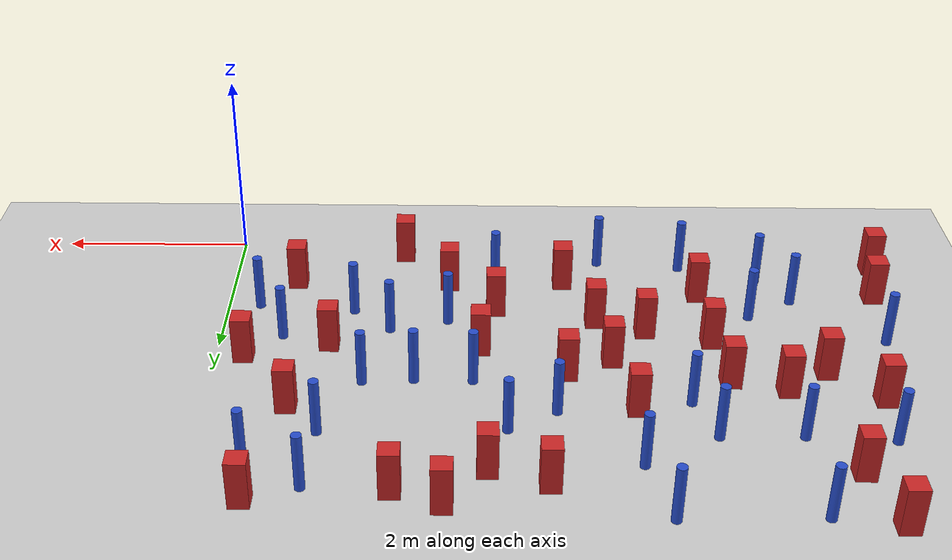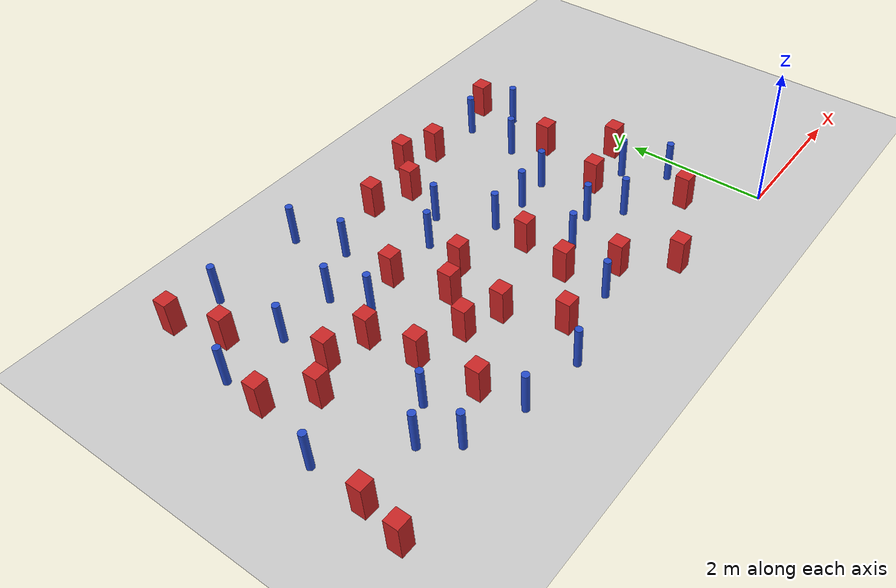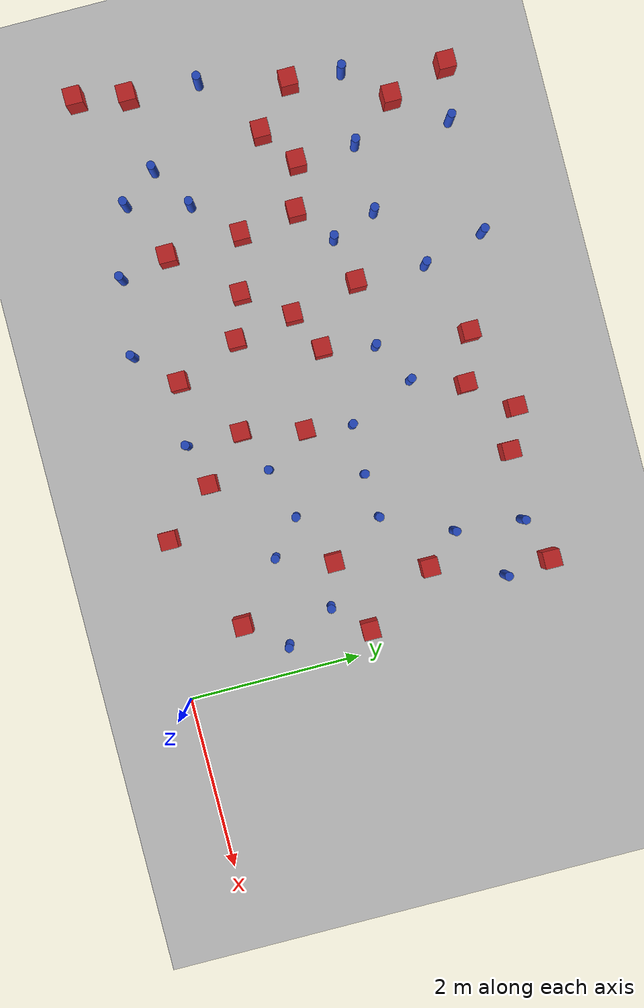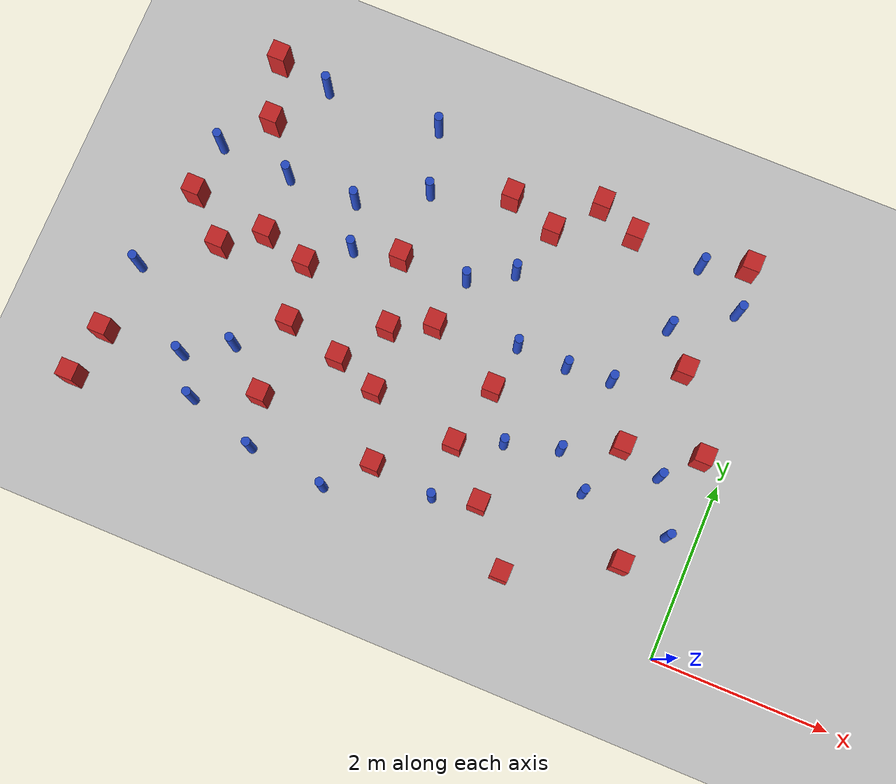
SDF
<sdf version="1.6">
 <world name="default">
  <model name="ground_plane">
   <static>1</static>
   <link name="link">
    <collision name="collision">
     <geometry><plane><normal>0 0 1</normal><size>100 100</size></plane></geometry>
     <surface><friction><ode><mu>100</mu><mu2>50</mu2></ode></friction></surface>
    </collision>
    <visual name="visual">
     <cast_shadows>0</cast_shadows>
     <geometry><plane><normal>0 0 1</normal><size>100 100</size></plane></geometry>
     <material>
      <ambient>1.0 1.0 1.0 1.0</ambient>
      <diffuse>0.8 0.8 0.8 1.0</diffuse>
      <specular>0.01 0.01 0.01 1.000000</specular>
     </material>
    </visual>
   </link>
  </model>
  <model name="square_post_obstacle5">
   <static>true</static>
   <pose>-3.86596981586 1.54469500206 -4.36207812815e-07 3.75137919937e-06 9.77721102514e-07 2.47381364184e-05</pose>
   <link name="link">
    <pose>0 0 0.25 0 -0 0</pose>
    <inertial>
     <mass>100</mass>
     <inertia>
      <ixx>0.166667</ixx>
      <ixy>0</ixy>
      <ixz>0</ixz>
      <iyy>0.166667</iyy>
      <iyz>0</iyz>
      <izz>0.166667</izz>
     </inertia>
    </inertial>
    <collision name="collision"><geometry><box><size>.2 .2 .5</size></box></geometry></collision>
    <visual name="visual">
     <geometry><box><size>.2 .2 .5</size></box></geometry>
     <material>
      <script><name>Gazebo/Red</name><uri>file://media/materials/scripts/gazebo.material</uri></script>
     </material>
    </visual>
   </link>
  </model>
  <model name="square_post_obstacle7">
   <static>true</static>
   <pose>-2.67470018567 2.05516223829 -4.36207812815e-07 3.75137919937e-06 9.77721102514e-07 2.47381364184e-05</pose>
   <link name="link">
    <pose>0 0 0.25 0 -0 0</pose>
    <inertial>
     <mass>100</mass>
     <inertia>
      <ixx>0.166667</ixx>
      <ixy>0</ixy>
      <ixz>0</ixz>
      <iyy>0.166667</iyy>
      <iyz>0</iyz>
      <izz>0.166667</izz>
     </inertia>
    </inertial>
    <collision name="collision"><geometry><box><size>.2 .2 .5</size></box></geometry></collision>
    <visual name="visual">
     <geometry><box><size>.2 .2 .5</size></box></geometry>
     <material>
      <script><name>Gazebo/Red</name><uri>file://media/materials/scripts/gazebo.material</uri></script>
     </material>
    </visual>
   </link>
  </model>
  <model name="pole_obstacle13">
   <static>true</static>
   <pose>-1.06494217687 4.20370881026 -3.09024884793e-07 -7.19054271912e-07 -2.11315075134e-07 -1.93935509265e-07</pose>
   <link name="link">
    <pose>0 0 0.3 0 -0 0</pose>
    <inertial>
     <mass>1</mass>
     <inertia><ixx>0.145833</ixx><ixy>0</ixy><ixz>0</ixz><iyy>0.145833</iyy><iyz>0</iyz><izz>0.125</izz></inertia>
    </inertial>
    <collision name="collision">
     <geometry><cylinder><radius>0.05</radius><length>.6</length></cylinder></geometry>
    </collision>
    <visual name="visual">
     <geometry><cylinder><radius>0.05</radius><length>.6</length></cylinder></geometry>
     <material>
      <script><name>Gazebo/Blue</name><uri>file://media/materials/scripts/gazebo.material</uri></script>
     </material>
    </visual>
   </link>
  </model>
  <model name="pole_obstacle26">
   <static>true</static>
   <pose>-1.74052222635 1.70367840327 -3.09024884793e-07 -7.19054271912e-07 -2.1131507513e-07 -1.93935509263e-07</pose>
   <link name="link">
    <pose>0 0 0.3 0 -0 0</pose>
    <inertial>
     <mass>1</mass>
     <inertia><ixx>0.145833</ixx><ixy>0</ixy><ixz>0</ixz><iyy>0.145833</iyy><iyz>0</iyz><izz>0.125</izz></inertia>
    </inertial>
    <collision name="collision">
     <geometry><cylinder><radius>0.05</radius><length>.6</length></cylinder></geometry>
    </collision>
    <visual name="visual">
     <geometry><cylinder><radius>0.05</radius><length>.6</length></cylinder></geometry>
     <material>
      <script><name>Gazebo/Blue</name><uri>file://media/materials/scripts/gazebo.material</uri></script>
     </material>
    </visual>
   </link>
  </model>
  <model name="pole_obstacle27">
   <static>true</static>
   <pose>-1.34639860156 1.36079025889 -3.09024884793e-07 -7.19054271912e-07 -2.1131507513e-07 -1.93935509263e-07</pose>
   <link name="link">
    <pose>0 0 0.3 0 -0 0</pose>
    <inertial>
     <mass>1</mass>
     <inertia><ixx>0.145833</ixx><ixy>0</ixy><ixz>0</ixz><iyy>0.145833</iyy><iyz>0</iyz><izz>0.125</izz></inertia>
    </inertial>
    <collision name="collision">
     <geometry><cylinder><radius>0.05</radius><length>.6</length></cylinder></geometry>
    </collision>
    <visual name="visual">
     <geometry><cylinder><radius>0.05</radius><length>.6</length></cylinder></geometry>
     <material>
      <script><name>Gazebo/Blue</name><uri>file://media/materials/scripts/gazebo.material</uri></script>
     </material>
    </visual>
   </link>
  </model>
  <model name="square_post_obstacle27">
   <static>true</static>
   <pose>-5.12865214852 2.57391601149 -4.36207812815e-07 3.75137919937e-06 9.77721102514e-07 2.47381364184e-05</pose>
   <link name="link">
    <pose>0 0 0.25 0 -0 0</pose>
    <inertial>
     <mass>100</mass>
     <inertia>
      <ixx>0.166667</ixx>
      <ixy>0</ixy>
      <ixz>0</ixz>
      <iyy>0.166667</iyy>
      <iyz>0</iyz>
      <izz>0.166667</izz>
     </inertia>
    </inertial>
    <collision name="collision"><geometry><box><size>.2 .2 .5</size></box></geometry></collision>
    <visual name="visual">
     <geometry><box><size>.2 .2 .5</size></box></geometry>
     <material>
      <script><name>Gazebo/Red</name><uri>file://media/materials/scripts/gazebo.material</uri></script>
     </material>
    </visual>
   </link>
  </model>
  <model name="pole_obstacle41">
   <static>true</static>
   <pose>-0.336554518417 1.26419817546 -3.09024884793e-07 -7.19054271912e-07 -2.11315075135e-07 -1.93935509265e-07</pose>
   <link name="link">
    <pose>0 0 0.3 0 -0 0</pose>
    <inertial>
     <mass>1</mass>
     <inertia><ixx>0.145833</ixx><ixy>0</ixy><ixz>0</ixz><iyy>0.145833</iyy><iyz>0</iyz><izz>0.125</izz></inertia>
    </inertial>
    <collision name="collision">
     <geometry><cylinder><radius>0.05</radius><length>.6</length></cylinder></geometry>
    </collision>
    <visual name="visual">
     <geometry><cylinder><radius>0.05</radius><length>.6</length></cylinder></geometry>
     <material>
      <script><name>Gazebo/Blue</name><uri>file://media/materials/scripts/gazebo.material</uri></script>
     </material>
    </visual>
   </link>
  </model>
  <model name="square_post_obstacle31">
   <static>true</static>
   <pose>-6.58038819236 2.8579494461 -4.36207812815e-07 3.75137919937e-06 9.77721102514e-07 2.47381364184e-05</pose>
   <link name="link">
    <pose>0 0 0.25 0 -0 0</pose>
    <inertial>
     <mass>100</mass>
     <inertia>
      <ixx>0.166667</ixx>
      <ixy>0</ixy>
      <ixz>0</ixz>
      <iyy>0.166667</iyy>
      <iyz>0</iyz>
      <izz>0.166667</izz>
     </inertia>
    </inertial>
    <collision name="collision"><geometry><box><size>.2 .2 .5</size></box></geometry></collision>
    <visual name="visual">
     <geometry><box><size>.2 .2 .5</size></box></geometry>
     <material>
      <script><name>Gazebo/Red</name><uri>file://media/materials/scripts/gazebo.material</uri></script>
     </material>
    </visual>
   </link>
  </model>
  <model name="pole_obstacle44">
   <static>true</static>
   <pose>-1.5063312732 2.62010520414 -3.09024884793e-07 -7.19054271912e-07 -2.11315075132e-07 -1.93935509263e-07</pose>
   <link name="link">
    <pose>0 0 0.3 0 -0 0</pose>
    <inertial>
     <mass>1</mass>
     <inertia><ixx>0.145833</ixx><ixy>0</ixy><ixz>0</ixz><iyy>0.145833</iyy><iyz>0</iyz><izz>0.125</izz></inertia>
    </inertial>
    <collision name="collision">
     <geometry><cylinder><radius>0.05</radius><length>.6</length></cylinder></geometry>
    </collision>
    <visual name="visual">
     <geometry><cylinder><radius>0.05</radius><length>.6</length></cylinder></geometry>
     <material>
      <script><name>Gazebo/Blue</name><uri>file://media/materials/scripts/gazebo.material</uri></script>
     </material>
    </visual>
   </link>
  </model>
  <model name="pole_obstacle53">
   <static>true</static>
   <pose>-2.83733491334 0.699360603717 -3.09024884793e-07 -7.19054271913e-07 -2.1131507512e-07 -1.93935509259e-07</pose>
   <link name="link">
    <pose>0 0 0.3 0 -0 0</pose>
    <inertial>
     <mass>1</mass>
     <inertia><ixx>0.145833</ixx><ixy>0</ixy><ixz>0</ixz><iyy>0.145833</iyy><iyz>0</iyz><izz>0.125</izz></inertia>
    </inertial>
    <collision name="collision">
     <geometry><cylinder><radius>0.05</radius><length>.6</length></cylinder></geometry>
    </collision>
    <visual name="visual">
     <geometry><cylinder><radius>0.05</radius><length>.6</length></cylinder></geometry>
     <material>
      <script><name>Gazebo/Blue</name><uri>file://media/materials/scripts/gazebo.material</uri></script>
     </material>
    </visual>
   </link>
  </model>
  <model name="pole_obstacle58">
   <static>true</static>
   <pose>-5.70055864035 3.42110021084 -3.09024884793e-07 -7.19054271912e-07 -2.11315075144e-07 -1.93935509269e-07</pose>
   <link name="link">
    <pose>0 0 0.3 0 -0 0</pose>
    <inertial>
     <mass>1</mass>
     <inertia><ixx>0.145833</ixx><ixy>0</ixy><ixz>0</ixz><iyy>0.145833</iyy><iyz>0</iyz><izz>0.125</izz></inertia>
    </inertial>
    <collision name="collision">
     <geometry><cylinder><radius>0.05</radius><length>.6</length></cylinder></geometry>
    </collision>
    <visual name="visual">
     <geometry><cylinder><radius>0.05</radius><length>.6</length></cylinder></geometry>
     <material>
      <script><name>Gazebo/Blue</name><uri>file://media/materials/scripts/gazebo.material</uri></script>
     </material>
    </visual>
   </link>
  </model>
  <model name="pole_obstacle60">
   <static>true</static>
   <pose>-2.33632131131 1.53788512353 -3.09024884793e-07 -7.19054271912e-07 -2.11315075122e-07 -1.93935509259e-07</pose>
   <link name="link">
    <pose>0 0 0.3 0 -0 0</pose>
    <inertial>
     <mass>1</mass>
     <inertia><ixx>0.145833</ixx><ixy>0</ixy><ixz>0</ixz><iyy>0.145833</iyy><iyz>0</iyz><izz>0.125</izz></inertia>
    </inertial>
    <collision name="collision">
     <geometry><cylinder><radius>0.05</radius><length>.6</length></cylinder></geometry>
    </collision>
    <visual name="visual">
     <geometry><cylinder><radius>0.05</radius><length>.6</length></cylinder></geometry>
     <material>
      <script><name>Gazebo/Blue</name><uri>file://media/materials/scripts/gazebo.material</uri></script>
     </material>
    </visual>
   </link>
  </model>
  <model name="pole_obstacle62">
   <static>true</static>
   <pose>-5.98188881663 1.11413940439 -3.09024884793e-07 -7.19054271912e-07 -2.11315075124e-07 -1.93935509261e-07</pose>
   <link name="link">
    <pose>0 0 0.3 0 -0 0</pose>
    <inertial>
     <mass>1</mass>
     <inertia><ixx>0.145833</ixx><ixy>0</ixy><ixz>0</ixz><iyy>0.145833</iyy><iyz>0</iyz><izz>0.125</izz></inertia>
    </inertial>
    <collision name="collision">
     <geometry><cylinder><radius>0.05</radius><length>.6</length></cylinder></geometry>
    </collision>
    <visual name="visual">
     <geometry><cylinder><radius>0.05</radius><length>.6</length></cylinder></geometry>
     <material>
      <script><name>Gazebo/Blue</name><uri>file://media/materials/scripts/gazebo.material</uri></script>
     </material>
    </visual>
   </link>
  </model>
  <model name="pole_obstacle64">
   <static>true</static>
   <pose>-4.16445814384 3.85342391064 -3.09024884793e-07 -7.19054271912e-07 -2.11315075144e-07 -1.93935509269e-07</pose>
   <link name="link">
    <pose>0 0 0.3 0 -0 0</pose>
    <inertial>
     <mass>1</mass>
     <inertia><ixx>0.145833</ixx><ixy>0</ixy><ixz>0</ixz><iyy>0.145833</iyy><iyz>0</iyz><izz>0.125</izz></inertia>
    </inertial>
    <collision name="collision">
     <geometry><cylinder><radius>0.05</radius><length>.6</length></cylinder></geometry>
    </collision>
    <visual name="visual">
     <geometry><cylinder><radius>0.05</radius><length>.6</length></cylinder></geometry>
     <material>
      <script><name>Gazebo/Blue</name><uri>file://media/materials/scripts/gazebo.material</uri></script>
     </material>
    </visual>
   </link>
  </model>
  <model name="square_post_obstacle50">
   <static>true</static>
   <pose>-6.87411885531 1.03703224985 -4.36207812815e-07 3.75137919937e-06 9.77721102514e-07 2.47381364184e-05</pose>
   <link name="link">
    <pose>0 0 0.25 0 -0 0</pose>
    <inertial>
     <mass>100</mass>
     <inertia>
      <ixx>0.166667</ixx>
      <ixy>0</ixy>
      <ixz>0</ixz>
      <iyy>0.166667</iyy>
      <iyz>0</iyz>
      <izz>0.166667</izz>
     </inertia>
    </inertial>
    <collision name="collision"><geometry><box><size>.2 .2 .5</size></box></geometry></collision>
    <visual name="visual">
     <geometry><box><size>.2 .2 .5</size></box></geometry>
     <material>
      <script><name>Gazebo/Red</name><uri>file://media/materials/scripts/gazebo.material</uri></script>
     </material>
    </visual>
   </link>
  </model>
  <model name="square_post_obstacle64">
   <static>true</static>
   <pose>-6.98606019736 0.448361944423 -4.36207812815e-07 3.75137919937e-06 9.77721102514e-07 2.47381364184e-05</pose>
   <link name="link">
    <pose>0 0 0.25 0 -0 0</pose>
    <inertial>
     <mass>100</mass>
     <inertia>
      <ixx>0.166667</ixx>
      <ixy>0</ixy>
      <ixz>0</ixz>
      <iyy>0.166667</iyy>
      <iyz>0</iyz>
      <izz>0.166667</izz>
     </inertia>
    </inertial>
    <collision name="collision"><geometry><box><size>.2 .2 .5</size></box></geometry></collision>
    <visual name="visual">
     <geometry><box><size>.2 .2 .5</size></box></geometry>
     <material>
      <script><name>Gazebo/Red</name><uri>file://media/materials/scripts/gazebo.material</uri></script>
     </material>
    </visual>
   </link>
  </model>
  <model name="square_post_obstacle65">
   <static>true</static>
   <pose>-3.53139885994 2.47123605929 -4.36207812815e-07 3.75137919937e-06 9.77721102514e-07 2.47381364184e-05</pose>
   <link name="link">
    <pose>0 0 0.25 0 -0 0</pose>
    <inertial>
     <mass>100</mass>
     <inertia>
      <ixx>0.166667</ixx>
      <ixy>0</ixy>
      <ixz>0</ixz>
      <iyy>0.166667</iyy>
      <iyz>0</iyz>
      <izz>0.166667</izz>
     </inertia>
    </inertial>
    <collision name="collision"><geometry><box><size>.2 .2 .5</size></box></geometry></collision>
    <visual name="visual">
     <geometry><box><size>.2 .2 .5</size></box></geometry>
     <material>
      <script><name>Gazebo/Red</name><uri>file://media/materials/scripts/gazebo.material</uri></script>
     </material>
    </visual>
   </link>
  </model>
  <model name="square_post_obstacle77">
   <static>true</static>
   <pose>-2.33182771768 4.44160547545 -4.36207812815e-07 3.75137919937e-06 9.77721102514e-07 2.47381364184e-05</pose>
   <link name="link">
    <pose>0 0 0.25 0 -0 0</pose>
    <inertial>
     <mass>100</mass>
     <inertia>
      <ixx>0.166667</ixx>
      <ixy>0</ixy>
      <ixz>0</ixz>
      <iyy>0.166667</iyy>
      <iyz>0</iyz>
      <izz>0.166667</izz>
     </inertia>
    </inertial>
    <collision name="collision"><geometry><box><size>.2 .2 .5</size></box></geometry></collision>
    <visual name="visual">
     <geometry><box><size>.2 .2 .5</size></box></geometry>
     <material>
      <script><name>Gazebo/Red</name><uri>file://media/materials/scripts/gazebo.material</uri></script>
     </material>
    </visual>
   </link>
  </model>
  <model name="square_post_obstacle84">
   <static>true</static>
   <pose>-3.56243313619 0.79223876171 -4.36207812815e-07 3.75137919937e-06 9.77721102514e-07 2.47381364184e-05</pose>
   <link name="link">
    <pose>0 0 0.25 0 -0 0</pose>
    <inertial>
     <mass>100</mass>
     <inertia>
      <ixx>0.166667</ixx>
      <ixy>0</ixy>
      <ixz>0</ixz>
      <iyy>0.166667</iyy>
      <iyz>0</iyz>
      <izz>0.166667</izz>
     </inertia>
    </inertial>
    <collision name="collision"><geometry><box><size>.2 .2 .5</size></box></geometry></collision>
    <visual name="visual">
     <geometry><box><size>.2 .2 .5</size></box></geometry>
     <material>
      <script><name>Gazebo/Red</name><uri>file://media/materials/scripts/gazebo.material</uri></script>
     </material>
    </visual>
   </link>
  </model>
  <model name="square_post_obstacle86">
   <static>true</static>
   <pose>-6.32651156995 4.64239583076 -4.36207812815e-07 3.75137919937e-06 9.77721102514e-07 2.47381364184e-05</pose>
   <link name="link">
    <pose>0 0 0.25 0 -0 0</pose>
    <inertial>
     <mass>100</mass>
     <inertia>
      <ixx>0.166667</ixx>
      <ixy>0</ixy>
      <ixz>0</ixz>
      <iyy>0.166667</iyy>
      <iyz>0</iyz>
      <izz>0.166667</izz>
     </inertia>
    </inertial>
    <collision name="collision"><geometry><box><size>.2 .2 .5</size></box></geometry></collision>
    <visual name="visual">
     <geometry><box><size>.2 .2 .5</size></box></geometry>
     <material>
      <script><name>Gazebo/Red</name><uri>file://media/materials/scripts/gazebo.material</uri></script>
     </material>
    </visual>
   </link>
  </model>
  <model name="square_post_obstacle91">
   <static>true</static>
   <pose>-0.559303267411 4.39262893478 -4.36207812815e-07 3.75137919937e-06 9.77721102514e-07 2.47381364184e-05</pose>
   <link name="link">
    <pose>0 0 0.25 0 -0 0</pose>
    <inertial>
     <mass>100</mass>
     <inertia>
      <ixx>0.166667</ixx>
      <ixy>0</ixy>
      <ixz>0</ixz>
      <iyy>0.166667</iyy>
      <iyz>0</iyz>
      <izz>0.166667</izz>
     </inertia>
    </inertial>
    <collision name="collision"><geometry><box><size>.2 .2 .5</size></box></geometry></collision>
    <visual name="visual">
     <geometry><box><size>.2 .2 .5</size></box></geometry>
     <material>
      <script><name>Gazebo/Red</name><uri>file://media/materials/scripts/gazebo.material</uri></script>
     </material>
    </visual>
   </link>
  </model>
  <model name="square_post_obstacle92">
   <static>true</static>
   <pose>-0.696640726939 0.811352926598 -4.36207812815e-07 3.75137919937e-06 9.77721102514e-07 2.47381364184e-05</pose>
   <link name="link">
    <pose>0 0 0.25 0 -0 0</pose>
    <inertial>
     <mass>100</mass>
     <inertia>
      <ixx>0.166667</ixx>
      <ixy>0</ixy>
      <ixz>0</ixz>
      <iyy>0.166667</iyy>
      <iyz>0</iyz>
      <izz>0.166667</izz>
     </inertia>
    </inertial>
    <collision name="collision"><geometry><box><size>.2 .2 .5</size></box></geometry></collision>
    <visual name="visual">
     <geometry><box><size>.2 .2 .5</size></box></geometry>
     <material>
      <script><name>Gazebo/Red</name><uri>file://media/materials/scripts/gazebo.material</uri></script>
     </material>
    </visual>
   </link>
  </model>
  <model name="pole_obstacle101">
   <static>true</static>
   <pose>-0.49868548822 3.85878045424 -3.09024884793e-07 -7.19054271912e-07 -2.11315075121e-07 -1.93935509258e-07</pose>
   <link name="link">
    <pose>0 0 0.3 0 -0 0</pose>
    <inertial>
     <mass>1</mass>
     <inertia><ixx>0.145833</ixx><ixy>0</ixy><ixz>0</ixz><iyy>0.145833</iyy><iyz>0</iyz><izz>0.125</izz></inertia>
    </inertial>
    <collision name="collision">
     <geometry><cylinder><radius>0.05</radius><length>.6</length></cylinder></geometry>
    </collision>
    <visual name="visual">
     <geometry><cylinder><radius>0.05</radius><length>.6</length></cylinder></geometry>
     <material>
      <script><name>Gazebo/Blue</name><uri>file://media/materials/scripts/gazebo.material</uri></script>
     </material>
    </visual>
   </link>
  </model>
  <model name="square_post_obstacle93">
   <static>true</static>
   <pose>-5.03005666825 1.89623718523 -4.36207812815e-07 3.75137919937e-06 9.77721102514e-07 2.47381364184e-05</pose>
   <link name="link">
    <pose>0 0 0.25 0 -0 0</pose>
    <inertial>
     <mass>100</mass>
     <inertia>
      <ixx>0.166667</ixx>
      <ixy>0</ixy>
      <ixz>0</ixz>
      <iyy>0.166667</iyy>
      <iyz>0</iyz>
      <izz>0.166667</izz>
     </inertia>
    </inertial>
    <collision name="collision"><geometry><box><size>.2 .2 .5</size></box></geometry></collision>
    <visual name="visual">
     <geometry><box><size>.2 .2 .5</size></box></geometry>
     <material>
      <script><name>Gazebo/Red</name><uri>file://media/materials/scripts/gazebo.material</uri></script>
     </material>
    </visual>
   </link>
  </model>
  <model name="square_post_obstacle95">
   <static>true</static>
   <pose>-0.287415028788 2.20524744623 -4.36207812815e-07 3.75137919937e-06 9.77721102514e-07 2.47381364184e-05</pose>
   <link name="link">
    <pose>0 0 0.25 0 -0 0</pose>
    <inertial>
     <mass>100</mass>
     <inertia>
      <ixx>0.166667</ixx>
      <ixy>0</ixy>
      <ixz>0</ixz>
      <iyy>0.166667</iyy>
      <iyz>0</iyz>
      <izz>0.166667</izz>
     </inertia>
    </inertial>
    <collision name="collision"><geometry><box><size>.2 .2 .5</size></box></geometry></collision>
    <visual name="visual">
     <geometry><box><size>.2 .2 .5</size></box></geometry>
     <material>
      <script><name>Gazebo/Red</name><uri>file://media/materials/scripts/gazebo.material</uri></script>
     </material>
    </visual>
   </link>
  </model>
  <model name="square_post_obstacle96">
   <static>true</static>
   <pose>-4.9915953202 1.02432315084 -4.36207812815e-07 3.75137919937e-06 9.77721102514e-07 2.47381364184e-05</pose>
   <link name="link">
    <pose>0 0 0.25 0 -0 0</pose>
    <inertial>
     <mass>100</mass>
     <inertia>
      <ixx>0.166667</ixx>
      <ixy>0</ixy>
      <ixz>0</ixz>
      <iyy>0.166667</iyy>
      <iyz>0</iyz>
      <izz>0.166667</izz>
     </inertia>
    </inertial>
    <collision name="collision"><geometry><box><size>.2 .2 .5</size></box></geometry></collision>
    <visual name="visual">
     <geometry><box><size>.2 .2 .5</size></box></geometry>
     <material>
      <script><name>Gazebo/Red</name><uri>file://media/materials/scripts/gazebo.material</uri></script>
     </material>
    </visual>
   </link>
  </model>
  <model name="square_post_obstacle98">
   <static>true</static>
   <pose>-0.808606617557 3.03412416331 -4.36207812815e-07 3.75137919937e-06 9.77721102514e-07 2.47381364184e-05</pose>
   <link name="link">
    <pose>0 0 0.25 0 -0 0</pose>
    <inertial>
     <mass>100</mass>
     <inertia>
      <ixx>0.166667</ixx>
      <ixy>0</ixy>
      <ixz>0</ixz>
      <iyy>0.166667</iyy>
      <iyz>0</iyz>
      <izz>0.166667</izz>
     </inertia>
    </inertial>
    <collision name="collision"><geometry><box><size>.2 .2 .5</size></box></geometry></collision>
    <visual name="visual">
     <geometry><box><size>.2 .2 .5</size></box></geometry>
     <material>
      <script><name>Gazebo/Red</name><uri>file://media/materials/scripts/gazebo.material</uri></script>
     </material>
    </visual>
   </link>
  </model>
  <model name="pole_obstacle104">
   <static>true</static>
   <pose>-4.36012940753 4.57625841259 -3.09024884793e-07 -7.19054271911e-07 -2.1131507516e-07 -1.93935509277e-07</pose>
   <link name="link">
    <pose>0 0 0.3 0 -0 0</pose>
    <inertial>
     <mass>1</mass>
     <inertia><ixx>0.145833</ixx><ixy>0</ixy><ixz>0</ixz><iyy>0.145833</iyy><iyz>0</iyz><izz>0.125</izz></inertia>
    </inertial>
    <collision name="collision">
     <geometry><cylinder><radius>0.05</radius><length>.6</length></cylinder></geometry>
    </collision>
    <visual name="visual">
     <geometry><cylinder><radius>0.05</radius><length>.6</length></cylinder></geometry>
     <material>
      <script><name>Gazebo/Blue</name><uri>file://media/materials/scripts/gazebo.material</uri></script>
     </material>
    </visual>
   </link>
  </model>
  <model name="square_post_obstacle102">
   <static>true</static>
   <pose>-3.99125631286 2.24474581565 -4.36207812815e-07 3.75137919937e-06 9.77721102514e-07 2.47381364184e-05</pose>
   <link name="link">
    <pose>0 0 0.25 0 -0 0</pose>
    <inertial>
     <mass>100</mass>
     <inertia>
      <ixx>0.166667</ixx>
      <ixy>0</ixy>
      <ixz>0</ixz>
      <iyy>0.166667</iyy>
      <iyz>0</iyz>
      <izz>0.166667</izz>
     </inertia>
    </inertial>
    <collision name="collision"><geometry><box><size>.2 .2 .5</size></box></geometry></collision>
    <visual name="visual">
     <geometry><box><size>.2 .2 .5</size></box></geometry>
     <material>
      <script><name>Gazebo/Red</name><uri>file://media/materials/scripts/gazebo.material</uri></script>
     </material>
    </visual>
   </link>
  </model>
  <model name="pole_obstacle108">
   <static>true</static>
   <pose>-3.97522700804 0.355290863343 -3.09024884848e-07 -7.19054271902e-07 -2.11315075204e-07 -1.93935509288e-07</pose>
   <link name="link">
    <pose>0 0 0.3 0 -0 0</pose>
    <inertial>
     <mass>1</mass>
     <inertia><ixx>0.145833</ixx><ixy>0</ixy><ixz>0</ixz><iyy>0.145833</iyy><iyz>0</iyz><izz>0.125</izz></inertia>
    </inertial>
    <collision name="collision">
     <geometry><cylinder><radius>0.05</radius><length>.6</length></cylinder></geometry>
    </collision>
    <visual name="visual">
     <geometry><cylinder><radius>0.05</radius><length>.6</length></cylinder></geometry>
     <material>
      <script><name>Gazebo/Blue</name><uri>file://media/materials/scripts/gazebo.material</uri></script>
     </material>
    </visual>
   </link>
  </model>
  <model name="pole_obstacle110">
   <static>true</static>
   <pose>-4.70966506186 2.91574374307 -3.09024884793e-07 -7.19054271912e-07 -2.11315075144e-07 -1.93935509269e-07</pose>
   <link name="link">
    <pose>0 0 0.3 0 -0 0</pose>
    <inertial>
     <mass>1</mass>
     <inertia><ixx>0.145833</ixx><ixy>0</ixy><ixz>0</ixz><iyy>0.145833</iyy><iyz>0</iyz><izz>0.125</izz></inertia>
    </inertial>
    <collision name="collision">
     <geometry><cylinder><radius>0.05</radius><length>.6</length></cylinder></geometry>
    </collision>
    <visual name="visual">
     <geometry><cylinder><radius>0.05</radius><length>.6</length></cylinder></geometry>
     <material>
      <script><name>Gazebo/Blue</name><uri>file://media/materials/scripts/gazebo.material</uri></script>
     </material>
    </visual>
   </link>
  </model>
  <model name="square_post_obstacle107">
   <static>true</static>
   <pose>-2.73363683931 3.96021690866 -4.36207812815e-07 3.75137919937e-06 9.77721102514e-07 2.47381364184e-05</pose>
   <link name="link">
    <pose>0 0 0.25 0 -0 0</pose>
    <inertial>
     <mass>100</mass>
     <inertia>
      <ixx>0.166667</ixx>
      <ixy>0</ixy>
      <ixz>0</ixz>
      <iyy>0.166667</iyy>
      <iyz>0</iyz>
      <izz>0.166667</izz>
     </inertia>
    </inertial>
    <collision name="collision"><geometry><box><size>.2 .2 .5</size></box></geometry></collision>
    <visual name="visual">
     <geometry><box><size>.2 .2 .5</size></box></geometry>
     <material>
      <script><name>Gazebo/Red</name><uri>file://media/materials/scripts/gazebo.material</uri></script>
     </material>
    </visual>
   </link>
  </model>
  <model name="square_post_obstacle115">
   <static>true</static>
   <pose>-5.66613386189 2.72070557219 -4.36207812815e-07 3.75137919937e-06 9.77721102514e-07 2.47381364184e-05</pose>
   <link name="link">
    <pose>0 0 0.25 0 -0 0</pose>
    <inertial>
     <mass>100</mass>
     <inertia>
      <ixx>0.166667</ixx>
      <ixy>0</ixy>
      <ixz>0</ixz>
      <iyy>0.166667</iyy>
      <iyz>0</iyz>
      <izz>0.166667</izz>
     </inertia>
    </inertial>
    <collision name="collision"><geometry><box><size>.2 .2 .5</size></box></geometry></collision>
    <visual name="visual">
     <geometry><box><size>.2 .2 .5</size></box></geometry>
     <material>
      <script><name>Gazebo/Red</name><uri>file://media/materials/scripts/gazebo.material</uri></script>
     </material>
    </visual>
   </link>
  </model>
  <model name="pole_obstacle128">
   <static>true</static>
   <pose>-3.40625825662 3.0725760385 -3.09024884793e-07 -7.19054271912e-07 -2.11315075128e-07 -1.93935509262e-07</pose>
   <link name="link">
    <pose>0 0 0.3 0 -0 0</pose>
    <inertial>
     <mass>1</mass>
     <inertia><ixx>0.145833</ixx><ixy>0</ixy><ixz>0</ixz><iyy>0.145833</iyy><iyz>0</iyz><izz>0.125</izz></inertia>
    </inertial>
    <collision name="collision">
     <geometry><cylinder><radius>0.05</radius><length>.6</length></cylinder></geometry>
    </collision>
    <visual name="visual">
     <geometry><cylinder><radius>0.05</radius><length>.6</length></cylinder></geometry>
     <material>
      <script><name>Gazebo/Blue</name><uri>file://media/materials/scripts/gazebo.material</uri></script>
     </material>
    </visual>
   </link>
  </model>
  <model name="square_post_obstacle126">
   <static>true</static>
   <pose>-1.86661129223 4.25445898203 -4.36207812815e-07 3.75137919937e-06 9.77721102514e-07 2.47381364184e-05</pose>
   <link name="link">
    <pose>0 0 0.25 0 -0 0</pose>
    <inertial>
     <mass>100</mass>
     <inertia>
      <ixx>0.166667</ixx>
      <ixy>0</ixy>
      <ixz>0</ixz>
      <iyy>0.166667</iyy>
      <iyz>0</iyz>
      <izz>0.166667</izz>
     </inertia>
    </inertial>
    <collision name="collision"><geometry><box><size>.2 .2 .5</size></box></geometry></collision>
    <visual name="visual">
     <geometry><box><size>.2 .2 .5</size></box></geometry>
     <material>
      <script><name>Gazebo/Red</name><uri>file://media/materials/scripts/gazebo.material</uri></script>
     </material>
    </visual>
   </link>
  </model>
  <model name="square_post_obstacle128">
   <static>true</static>
   <pose>-2.83709324169 1.33447685394 -4.36207812815e-07 3.75137919937e-06 9.77721102514e-07 2.47381364184e-05</pose>
   <link name="link">
    <pose>0 0 0.25 0 -0 0</pose>
    <inertial>
     <mass>100</mass>
     <inertia>
      <ixx>0.166667</ixx>
      <ixy>0</ixy>
      <ixz>0</ixz>
      <iyy>0.166667</iyy>
      <iyz>0</iyz>
      <izz>0.166667</izz>
     </inertia>
    </inertial>
    <collision name="collision"><geometry><box><size>.2 .2 .5</size></box></geometry></collision>
    <visual name="visual">
     <geometry><box><size>.2 .2 .5</size></box></geometry>
     <material>
      <script><name>Gazebo/Red</name><uri>file://media/materials/scripts/gazebo.material</uri></script>
     </material>
    </visual>
   </link>
  </model>
  <model name="square_post_obstacle133">
   <static>true</static>
   <pose>-2.34517829482 0.832895999586 -4.36207812815e-07 3.75137919937e-06 9.77721102514e-07 2.47381364184e-05</pose>
   <link name="link">
    <pose>0 0 0.25 0 -0 0</pose>
    <inertial>
     <mass>100</mass>
     <inertia>
      <ixx>0.166667</ixx>
      <ixy>0</ixy>
      <ixz>0</ixz>
      <iyy>0.166667</iyy>
      <iyz>0</iyz>
      <izz>0.166667</izz>
     </inertia>
    </inertial>
    <collision name="collision"><geometry><box><size>.2 .2 .5</size></box></geometry></collision>
    <visual name="visual">
     <geometry><box><size>.2 .2 .5</size></box></geometry>
     <material>
      <script><name>Gazebo/Red</name><uri>file://media/materials/scripts/gazebo.material</uri></script>
     </material>
    </visual>
   </link>
  </model>
  <model name="pole_obstacle139">
   <static>true</static>
   <pose>-0.642163546959 1.83416449676 -3.09024884793e-07 -7.19054271912e-07 -2.11315075135e-07 -1.93935509266e-07</pose>
   <link name="link">
    <pose>0 0 0.3 0 -0 0</pose>
    <inertial>
     <mass>1</mass>
     <inertia><ixx>0.145833</ixx><ixy>0</ixy><ixz>0</ixz><iyy>0.145833</iyy><iyz>0</iyz><izz>0.125</izz></inertia>
    </inertial>
    <collision name="collision">
     <geometry><cylinder><radius>0.05</radius><length>.6</length></cylinder></geometry>
    </collision>
    <visual name="visual">
     <geometry><cylinder><radius>0.05</radius><length>.6</length></cylinder></geometry>
     <material>
      <script><name>Gazebo/Blue</name><uri>file://media/materials/scripts/gazebo.material</uri></script>
     </material>
    </visual>
   </link>
  </model>
  <model name="pole_obstacle142">
   <static>true</static>
   <pose>-2.01756951175 2.5809291899 -3.09024884848e-07 -7.19054271902e-07 -2.11315075195e-07 -1.93935509284e-07</pose>
   <link name="link">
    <pose>0 0 0.3 0 -0 0</pose>
    <inertial>
     <mass>1</mass>
     <inertia><ixx>0.145833</ixx><ixy>0</ixy><ixz>0</ixz><iyy>0.145833</iyy><iyz>0</iyz><izz>0.125</izz></inertia>
    </inertial>
    <collision name="collision">
     <geometry><cylinder><radius>0.05</radius><length>.6</length></cylinder></geometry>
    </collision>
    <visual name="visual">
     <geometry><cylinder><radius>0.05</radius><length>.6</length></cylinder></geometry>
     <material>
      <script><name>Gazebo/Blue</name><uri>file://media/materials/scripts/gazebo.material</uri></script>
     </material>
    </visual>
   </link>
  </model>
  <model name="square_post_obstacle140">
   <static>true</static>
   <pose>-4.17408874685 3.03933758591 -4.36207812815e-07 3.75137919937e-06 9.77721102514e-07 2.47381364184e-05</pose>
   <link name="link">
    <pose>0 0 0.25 0 -0 0</pose>
    <inertial>
     <mass>100</mass>
     <inertia>
      <ixx>0.166667</ixx>
      <ixy>0</ixy>
      <ixz>0</ixz>
      <iyy>0.166667</iyy>
      <iyz>0</iyz>
      <izz>0.166667</izz>
     </inertia>
    </inertial>
    <collision name="collision"><geometry><box><size>.2 .2 .5</size></box></geometry></collision>
    <visual name="visual">
     <geometry><box><size>.2 .2 .5</size></box></geometry>
     <material>
      <script><name>Gazebo/Red</name><uri>file://media/materials/scripts/gazebo.material</uri></script>
     </material>
    </visual>
   </link>
  </model>
  <model name="pole_obstacle151">
   <static>true</static>
   <pose>-5.67290663503 0.706738489872 -3.09024884793e-07 -7.19054271912e-07 -2.11315075134e-07 -1.93935509265e-07</pose>
   <link name="link">
    <pose>0 0 0.3 0 -0 0</pose>
    <inertial>
     <mass>1</mass>
     <inertia><ixx>0.145833</ixx><ixy>0</ixy><ixz>0</ixz><iyy>0.145833</iyy><iyz>0</iyz><izz>0.125</izz></inertia>
    </inertial>
    <collision name="collision">
     <geometry><cylinder><radius>0.05</radius><length>.6</length></cylinder></geometry>
    </collision>
    <visual name="visual">
     <geometry><cylinder><radius>0.05</radius><length>.6</length></cylinder></geometry>
     <material>
      <script><name>Gazebo/Blue</name><uri>file://media/materials/scripts/gazebo.material</uri></script>
     </material>
    </visual>
   </link>
  </model>
  <model name="pole_obstacle152">
   <static>true</static>
   <pose>-4.89847990731 3.43625127035 -3.09024884793e-07 -7.19054271912e-07 -2.11315075144e-07 -1.93935509269e-07</pose>
   <link name="link">
    <pose>0 0 0.3 0 -0 0</pose>
    <inertial>
     <mass>1</mass>
     <inertia><ixx>0.145833</ixx><ixy>0</ixy><ixz>0</ixz><iyy>0.145833</iyy><iyz>0</iyz><izz>0.125</izz></inertia>
    </inertial>
    <collision name="collision">
     <geometry><cylinder><radius>0.05</radius><length>.6</length></cylinder></geometry>
    </collision>
    <visual name="visual">
     <geometry><cylinder><radius>0.05</radius><length>.6</length></cylinder></geometry>
     <material>
      <script><name>Gazebo/Blue</name><uri>file://media/materials/scripts/gazebo.material</uri></script>
     </material>
    </visual>
   </link>
  </model>
  <model name="pole_obstacle159">
   <static>true</static>
   <pose>-5.70111321805 4.53740931463 -3.09024884793e-07 -7.19054271911e-07 -2.1131507516e-07 -1.93935509277e-07</pose>
   <link name="link">
    <pose>0 0 0.3 0 -0 0</pose>
    <inertial>
     <mass>1</mass>
     <inertia><ixx>0.145833</ixx><ixy>0</ixy><ixz>0</ixz><iyy>0.145833</iyy><iyz>0</iyz><izz>0.125</izz></inertia>
    </inertial>
    <collision name="collision">
     <geometry><cylinder><radius>0.05</radius><length>.6</length></cylinder></geometry>
    </collision>
    <visual name="visual">
     <geometry><cylinder><radius>0.05</radius><length>.6</length></cylinder></geometry>
     <material>
      <script><name>Gazebo/Blue</name><uri>file://media/materials/scripts/gazebo.material</uri></script>
     </material>
    </visual>
   </link>
  </model>
  <model name="pole_obstacle161">
   <static>true</static>
   <pose>-2.92853352487 3.35892142768 -3.09024884793e-07 -7.19054271912e-07 -2.11315075144e-07 -1.93935509271e-07</pose>
   <link name="link">
    <pose>0 0 0.3 0 -0 0</pose>
    <inertial>
     <mass>1</mass>
     <inertia><ixx>0.145833</ixx><ixy>0</ixy><ixz>0</ixz><iyy>0.145833</iyy><iyz>0</iyz><izz>0.125</izz></inertia>
    </inertial>
    <collision name="collision">
     <geometry><cylinder><radius>0.05</radius><length>.6</length></cylinder></geometry>
    </collision>
    <visual name="visual">
     <geometry><cylinder><radius>0.05</radius><length>.6</length></cylinder></geometry>
     <material>
      <script><name>Gazebo/Blue</name><uri>file://media/materials/scripts/gazebo.material</uri></script>
     </material>
    </visual>
   </link>
  </model>
  <model name="pole_obstacle162">
   <static>true</static>
   <pose>-6.54570398533 3.47456520269 -3.09024884793e-07 -7.19054271912e-07 -2.11315075144e-07 -1.93935509269e-07</pose>
   <link name="link">
    <pose>0 0 0.3 0 -0 0</pose>
    <inertial>
     <mass>1</mass>
     <inertia><ixx>0.145833</ixx><ixy>0</ixy><ixz>0</ixz><iyy>0.145833</iyy><iyz>0</iyz><izz>0.125</izz></inertia>
    </inertial>
    <collision name="collision">
     <geometry><cylinder><radius>0.05</radius><length>.6</length></cylinder></geometry>
    </collision>
    <visual name="visual">
     <geometry><cylinder><radius>0.05</radius><length>.6</length></cylinder></geometry>
     <material>
      <script><name>Gazebo/Blue</name><uri>file://media/materials/scripts/gazebo.material</uri></script>
     </material>
    </visual>
   </link>
  </model>
  <model name="square_post_obstacle157">
   <static>true</static>
   <pose>-6.09845549706 2.41180835289 -4.36207812815e-07 3.75137919937e-06 9.77721102514e-07 2.47381364184e-05</pose>
   <link name="link">
    <pose>0 0 0.25 0 -0 0</pose>
    <inertial>
     <mass>100</mass>
     <inertia>
      <ixx>0.166667</ixx>
      <ixy>0</ixy>
      <ixz>0</ixz>
      <iyy>0.166667</iyy>
      <iyz>0</iyz>
      <izz>0.166667</izz>
     </inertia>
    </inertial>
    <collision name="collision"><geometry><box><size>.2 .2 .5</size></box></geometry></collision>
    <visual name="visual">
     <geometry><box><size>.2 .2 .5</size></box></geometry>
     <material>
      <script><name>Gazebo/Red</name><uri>file://media/materials/scripts/gazebo.material</uri></script>
     </material>
    </visual>
   </link>
  </model>
  <model name="square_post_obstacle163">
   <static>true</static>
   <pose>-1.13447962885 1.99795373884 -4.36207812815e-07 3.75137919937e-06 9.77721102514e-07 2.47381364184e-05</pose>
   <link name="link">
    <pose>0 0 0.25 0 -0 0</pose>
    <inertial>
     <mass>100</mass>
     <inertia>
      <ixx>0.166667</ixx>
      <ixy>0</ixy>
      <ixz>0</ixz>
      <iyy>0.166667</iyy>
      <iyz>0</iyz>
      <izz>0.166667</izz>
     </inertia>
    </inertial>
    <collision name="collision"><geometry><box><size>.2 .2 .5</size></box></geometry></collision>
    <visual name="visual">
     <geometry><box><size>.2 .2 .5</size></box></geometry>
     <material>
      <script><name>Gazebo/Red</name><uri>file://media/materials/scripts/gazebo.material</uri></script>
     </material>
    </visual>
   </link>
  </model>
  <model name="pole_obstacle166">
   <static>true</static>
   <pose>-1.13548907787 3.41528869615 -3.09024884793e-07 -7.19054271912e-07 -2.11315075132e-07 -1.93935509263e-07</pose>
   <link name="link">
    <pose>0 0 0.3 0 -0 0</pose>
    <inertial>
     <mass>1</mass>
     <inertia><ixx>0.145833</ixx><ixy>0</ixy><ixz>0</ixz><iyy>0.145833</iyy><iyz>0</iyz><izz>0.125</izz></inertia>
    </inertial>
    <collision name="collision">
     <geometry><cylinder><radius>0.05</radius><length>.6</length></cylinder></geometry>
    </collision>
    <visual name="visual">
     <geometry><cylinder><radius>0.05</radius><length>.6</length></cylinder></geometry>
     <material>
      <script><name>Gazebo/Blue</name><uri>file://media/materials/scripts/gazebo.material</uri></script>
     </material>
    </visual>
   </link>
  </model>
  <model name="pole_obstacle167">
   <static>true</static>
   <pose>-2.60025991967 2.59329362669 -3.09024884793e-07 -7.19054271912e-07 -2.11315075144e-07 -1.93935509271e-07</pose>
   <link name="link">
    <pose>0 0 0.3 0 -0 0</pose>
    <inertial>
     <mass>1</mass>
     <inertia><ixx>0.145833</ixx><ixy>0</ixy><ixz>0</ixz><iyy>0.145833</iyy><iyz>0</iyz><izz>0.125</izz></inertia>
    </inertial>
    <collision name="collision">
     <geometry><cylinder><radius>0.05</radius><length>.6</length></cylinder></geometry>
    </collision>
    <visual name="visual">
     <geometry><cylinder><radius>0.05</radius><length>.6</length></cylinder></geometry>
     <material>
      <script><name>Gazebo/Blue</name><uri>file://media/materials/scripts/gazebo.material</uri></script>
     </material>
    </visual>
   </link>
  </model>
  <model name="pole_obstacle168">
   <static>true</static>
   <pose>-5.49106108251 1.42385743364 -3.09024884793e-07 -7.19054271912e-07 -2.11315075124e-07 -1.93935509261e-07</pose>
   <link name="link">
    <pose>0 0 0.3 0 -0 0</pose>
    <inertial>
     <mass>1</mass>
     <inertia><ixx>0.145833</ixx><ixy>0</ixy><ixz>0</ixz><iyy>0.145833</iyy><iyz>0</iyz><izz>0.125</izz></inertia>
    </inertial>
    <collision name="collision">
     <geometry><cylinder><radius>0.05</radius><length>.6</length></cylinder></geometry>
    </collision>
    <visual name="visual">
     <geometry><cylinder><radius>0.05</radius><length>.6</length></cylinder></geometry>
     <material>
      <script><name>Gazebo/Blue</name><uri>file://media/materials/scripts/gazebo.material</uri></script>
     </material>
    </visual>
   </link>
  </model>
  <model name="square_post_obstacle171">
   <static>true</static>
   <pose>-3.29357018043 4.14873412954 -4.36207812815e-07 3.75137919937e-06 9.77721102514e-07 2.47381364184e-05</pose>
   <link name="link">
    <pose>0 0 0.25 0 -0 0</pose>
    <inertial>
     <mass>100</mass>
     <inertia>
      <ixx>0.166667</ixx>
      <ixy>0</ixy>
      <ixz>0</ixz>
      <iyy>0.166667</iyy>
      <iyz>0</iyz>
      <izz>0.166667</izz>
     </inertia>
    </inertial>
    <collision name="collision"><geometry><box><size>.2 .2 .5</size></box></geometry></collision>
    <visual name="visual">
     <geometry><box><size>.2 .2 .5</size></box></geometry>
     <material>
      <script><name>Gazebo/Red</name><uri>file://media/materials/scripts/gazebo.material</uri></script>
     </material>
    </visual>
   </link>
  </model>
  <model name="square_post_obstacle179">
   <static>true</static>
   <pose>-1.84426333221 0.235009669276 -4.36207812815e-07 3.75137919937e-06 9.77721102514e-07 2.47381364184e-05</pose>
   <link name="link">
    <pose>0 0 0.25 0 -0 0</pose>
    <inertial>
     <mass>100</mass>
     <inertia>
      <ixx>0.166667</ixx>
      <ixy>0</ixy>
      <ixz>0</ixz>
      <iyy>0.166667</iyy>
      <iyz>0</iyz>
      <izz>0.166667</izz>
     </inertia>
    </inertial>
    <collision name="collision"><geometry><box><size>.2 .2 .5</size></box></geometry></collision>
    <visual name="visual">
     <geometry><box><size>.2 .2 .5</size></box></geometry>
     <material>
      <script><name>Gazebo/Red</name><uri>file://media/materials/scripts/gazebo.material</uri></script>
     </material>
    </visual>
   </link>
  </model>
  <model name="square_post_obstacle182">
   <static>true</static>
   <pose>-6.1187067266 3.9463586592 -4.36207812815e-07 3.75137919937e-06 9.77721102514e-07 2.47381364184e-05</pose>
   <link name="link">
    <pose>0 0 0.25 0 -0 0</pose>
    <inertial>
     <mass>100</mass>
     <inertia>
      <ixx>0.166667</ixx>
      <ixy>0</ixy>
      <ixz>0</ixz>
      <iyy>0.166667</iyy>
      <iyz>0</iyz>
      <izz>0.166667</izz>
     </inertia>
    </inertial>
    <collision name="collision"><geometry><box><size>.2 .2 .5</size></box></geometry></collision>
    <visual name="visual">
     <geometry><box><size>.2 .2 .5</size></box></geometry>
     <material>
      <script><name>Gazebo/Red</name><uri>file://media/materials/scripts/gazebo.material</uri></script>
     </material>
    </visual>
   </link>
  </model>
  <model name="pole_obstacle185">
   <static>true</static>
   <pose>-6.83113210314 1.85895856085 -3.09024884793e-07 -7.19054271912e-07 -2.11315075124e-07 -1.93935509261e-07</pose>
   <link name="link">
    <pose>0 0 0.3 0 -0 0</pose>
    <inertial>
     <mass>1</mass>
     <inertia><ixx>0.145833</ixx><ixy>0</ixy><ixz>0</ixz><iyy>0.145833</iyy><iyz>0</iyz><izz>0.125</izz></inertia>
    </inertial>
    <collision name="collision">
     <geometry><cylinder><radius>0.05</radius><length>.6</length></cylinder></geometry>
    </collision>
    <visual name="visual">
     <geometry><cylinder><radius>0.05</radius><length>.6</length></cylinder></geometry>
     <material>
      <script><name>Gazebo/Blue</name><uri>file://media/materials/scripts/gazebo.material</uri></script>
     </material>
    </visual>
   </link>
  </model>
  <model name="square_post_obstacle196">
   <static>true</static>
   <pose>-4.36846022446 1.72507819648 -4.36207812815e-07 3.75137919937e-06 9.77721102514e-07 2.47381364184e-05</pose>
   <link name="link">
    <pose>0 0 0.25 0 -0 0</pose>
    <inertial>
     <mass>100</mass>
     <inertia>
      <ixx>0.166667</ixx>
      <ixy>0</ixy>
      <ixz>0</ixz>
      <iyy>0.166667</iyy>
      <iyz>0</iyz>
      <izz>0.166667</izz>
     </inertia>
    </inertial>
    <collision name="collision"><geometry><box><size>.2 .2 .5</size></box></geometry></collision>
    <visual name="visual">
     <geometry><box><size>.2 .2 .5</size></box></geometry>
     <material>
      <script><name>Gazebo/Red</name><uri>file://media/materials/scripts/gazebo.material</uri></script>
     </material>
    </visual>
   </link>
  </model>
  <model name="pole_obstacle199">
   <static>true</static>
   <pose>-4.86753813348 0.453769761622 -3.09024884793e-07 -7.19054271912e-07 -2.11315075125e-07 -1.93935509261e-07</pose>
   <link name="link">
    <pose>0 0 0.3 0 -0 0</pose>
    <inertial>
     <mass>1</mass>
     <inertia><ixx>0.145833</ixx><ixy>0</ixy><ixz>0</ixz><iyy>0.145833</iyy><iyz>0</iyz><izz>0.125</izz></inertia>
    </inertial>
    <collision name="collision">
     <geometry><cylinder><radius>0.05</radius><length>.6</length></cylinder></geometry>
    </collision>
    <visual name="visual">
     <geometry><cylinder><radius>0.05</radius><length>.6</length></cylinder></geometry>
     <material>
      <script><name>Gazebo/Blue</name><uri>file://media/materials/scripts/gazebo.material</uri></script>
     </material>
    </visual>
   </link>
  </model>
 </world>
</sdf>
